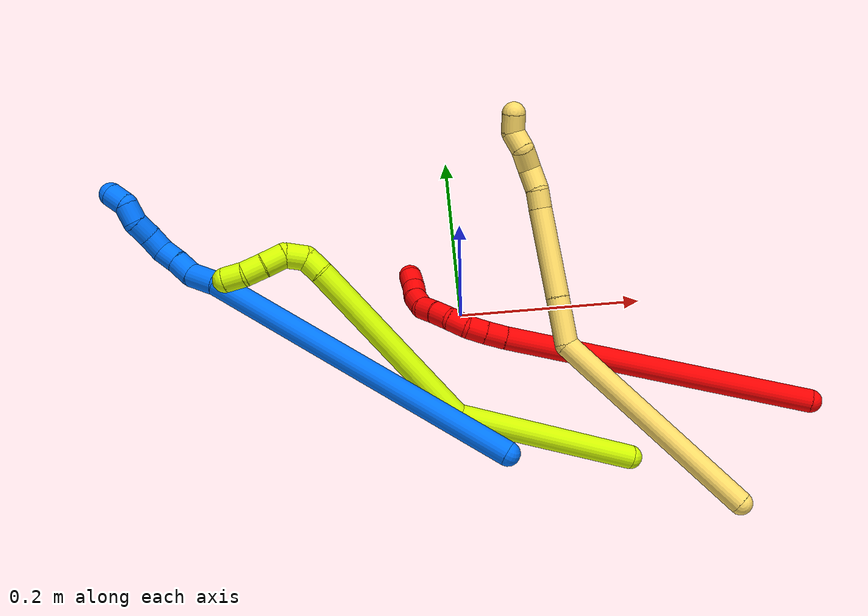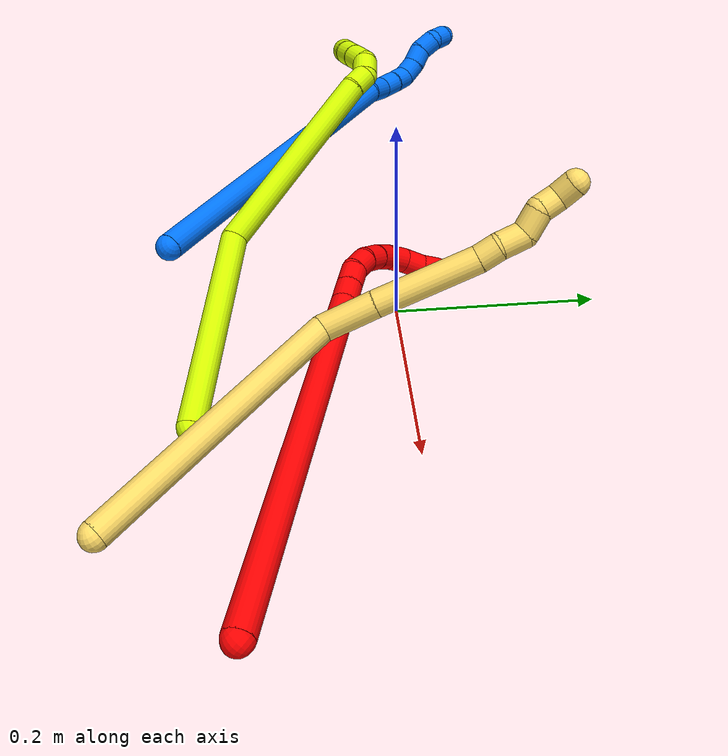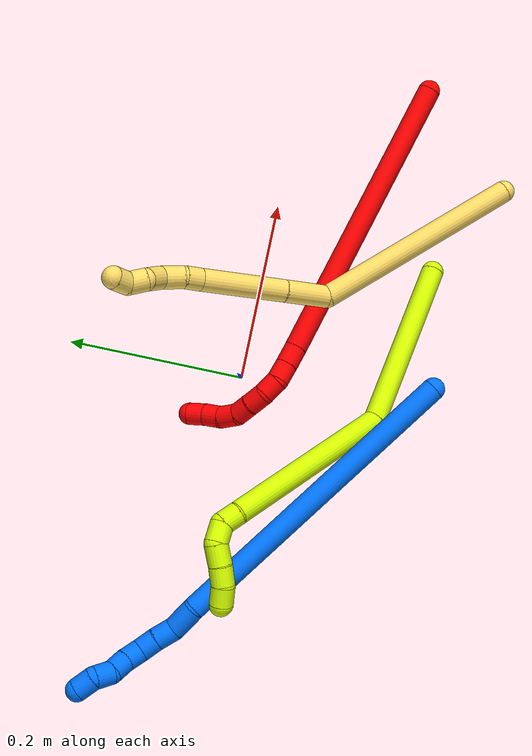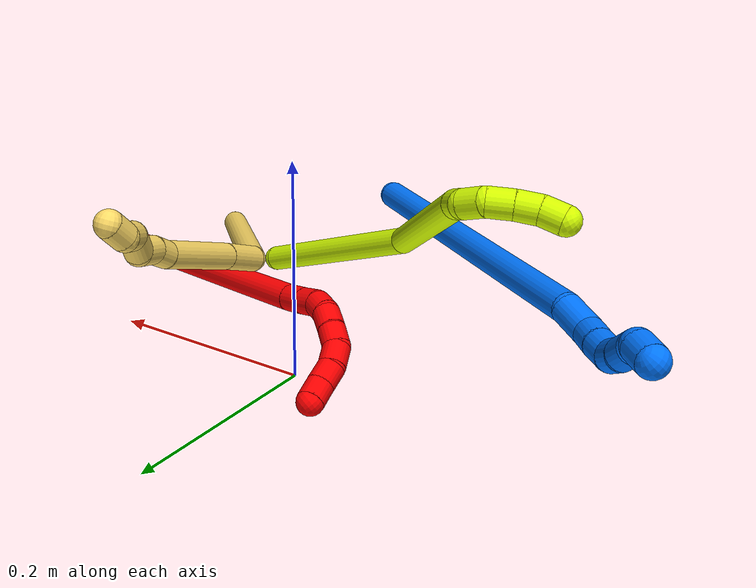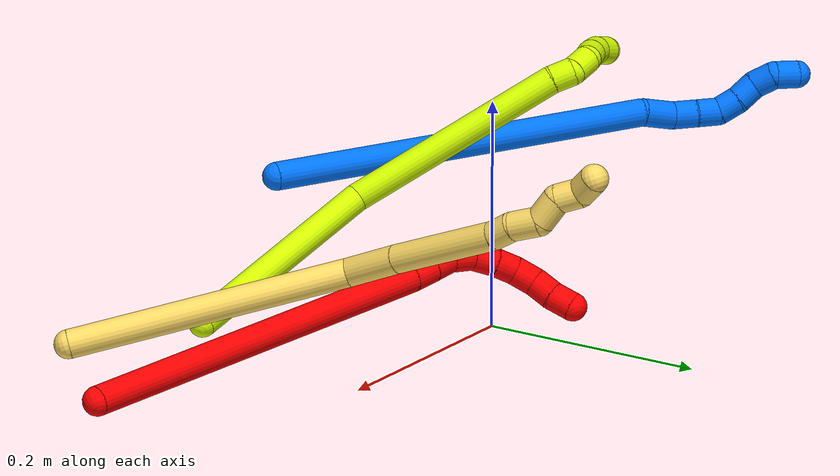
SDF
<sdf version="1.7">
 <world name="default">
  <model name="2">
   <static>0</static>
   <link name="2">
    <collision name="collision-cylinder-e_1_1_4">
     <pose>-0.140566 0.07217 0.053444 -0.933386 -1.00228 0.538556</pose>
     <geometry><cylinder><radius>0.0125</radius><length>0.333607</length></cylinder></geometry>
     <surface>
      <friction><ode><mu>1.16</mu><mu2>1.16</mu2><slip1>0</slip1><slip2>0</slip2></ode></friction>
      <contact><ode><kp>1e+06</kp><kd>1</kd><max_vel>0</max_vel><min_depth>0.001</min_depth></ode></contact>
     </surface>
    </collision>
    <visual name="visual-cylinder-e_1_1_4">
     <pose>-0.140566 0.07217 0.053444 -0.933386 -1.00228 0.538556</pose>
     <geometry><cylinder><radius>0.0125</radius><length>0.333607</length></cylinder></geometry>
     <material><ambient>1 0 0 1</ambient></material>
    </visual>
    <collision name="collision-cylinder-e_2_4_5">
     <pose>-0.290074 0.14998 0.110898 -0.952673 -0.912114 0.495796</pose>
     <geometry><cylinder><radius>0.0125</radius><length>0.022617</length></cylinder></geometry>
     <surface>
      <friction><ode><mu>1.16</mu><mu2>1.16</mu2><slip1>0</slip1><slip2>0</slip2></ode></friction>
      <contact><ode><kp>1e+06</kp><kd>1</kd><max_vel>0</max_vel><min_depth>0.001</min_depth></ode></contact>
     </surface>
    </collision>
    <visual name="visual-cylinder-e_2_4_5">
     <pose>-0.290074 0.14998 0.110898 -0.952673 -0.912114 0.495796</pose>
     <geometry><cylinder><radius>0.0125</radius><length>0.022617</length></cylinder></geometry>
     <material><ambient>1 0 0 1</ambient></material>
    </visual>
    <collision name="collision-cylinder-e_3_5_6">
     <pose>-0.306846 0.16126 0.118599 -0.9914 -0.860181 0.486286</pose>
     <geometry><cylinder><radius>0.0125</radius><length>0.02066</length></cylinder></geometry>
     <surface>
      <friction><ode><mu>1.16</mu><mu2>1.16</mu2><slip1>0</slip1><slip2>0</slip2></ode></friction>
      <contact><ode><kp>1e+06</kp><kd>1</kd><max_vel>0</max_vel><min_depth>0.001</min_depth></ode></contact>
     </surface>
    </collision>
    <visual name="visual-cylinder-e_3_5_6">
     <pose>-0.306846 0.16126 0.118599 -0.9914 -0.860181 0.486286</pose>
     <geometry><cylinder><radius>0.0125</radius><length>0.02066</length></cylinder></geometry>
     <material><ambient>1 0 0 1</ambient></material>
    </visual>
    <collision name="collision-cylinder-e_4_6_7">
     <pose>-0.323589 0.17233 0.122321 -1.56482 -1.02348 1.01838</pose>
     <geometry><cylinder><radius>0.0125</radius><length>0.020874</length></cylinder></geometry>
     <surface>
      <friction><ode><mu>1.16</mu><mu2>1.16</mu2><slip1>0</slip1><slip2>0</slip2></ode></friction>
      <contact><ode><kp>1e+06</kp><kd>1</kd><max_vel>0</max_vel><min_depth>0.001</min_depth></ode></contact>
     </surface>
    </collision>
    <visual name="visual-cylinder-e_4_6_7">
     <pose>-0.323589 0.17233 0.122321 -1.56482 -1.02348 1.01838</pose>
     <geometry><cylinder><radius>0.0125</radius><length>0.020874</length></cylinder></geometry>
     <material><ambient>1 0 0 1</ambient></material>
    </visual>
    <collision name="collision-cylinder-e_5_7_8">
     <pose>-0.341953 0.181156 0.11943 -2.28177 -1.12818 1.88732</pose>
     <geometry><cylinder><radius>0.0125</radius><length>0.020919</length></cylinder></geometry>
     <surface>
      <friction><ode><mu>1.16</mu><mu2>1.16</mu2><slip1>0</slip1><slip2>0</slip2></ode></friction>
      <contact><ode><kp>1e+06</kp><kd>1</kd><max_vel>0</max_vel><min_depth>0.001</min_depth></ode></contact>
     </surface>
    </collision>
    <visual name="visual-cylinder-e_5_7_8">
     <pose>-0.341953 0.181156 0.11943 -2.28177 -1.12818 1.88732</pose>
     <geometry><cylinder><radius>0.0125</radius><length>0.020919</length></cylinder></geometry>
     <material><ambient>1 0 0 1</ambient></material>
    </visual>
    <collision name="collision-cylinder-e_6_8_9">
     <pose>-0.360534 0.186814 0.113109 -2.5538 -1.15028 2.26796</pose>
     <geometry><cylinder><radius>0.0125</radius><length>0.020001</length></cylinder></geometry>
     <surface>
      <friction><ode><mu>1.16</mu><mu2>1.16</mu2><slip1>0</slip1><slip2>0</slip2></ode></friction>
      <contact><ode><kp>1e+06</kp><kd>1</kd><max_vel>0</max_vel><min_depth>0.001</min_depth></ode></contact>
     </surface>
    </collision>
    <visual name="visual-cylinder-e_6_8_9">
     <pose>-0.360534 0.186814 0.113109 -2.5538 -1.15028 2.26796</pose>
     <geometry><cylinder><radius>0.0125</radius><length>0.020001</length></cylinder></geometry>
     <material><ambient>1 0 0 1</ambient></material>
    </visual>
    <collision name="collision-cylinder-e_7_9_10">
     <pose>-0.376693 0.192526 0.102545 -2.69323 -0.723818 2.0574</pose>
     <geometry><cylinder><radius>0.0125</radius><length>0.021228</length></cylinder></geometry>
     <surface>
      <friction><ode><mu>1.16</mu><mu2>1.16</mu2><slip1>0</slip1><slip2>0</slip2></ode></friction>
      <contact><ode><kp>1e+06</kp><kd>1</kd><max_vel>0</max_vel><min_depth>0.001</min_depth></ode></contact>
     </surface>
    </collision>
    <visual name="visual-cylinder-e_7_9_10">
     <pose>-0.376693 0.192526 0.102545 -2.69323 -0.723818 2.0574</pose>
     <geometry><cylinder><radius>0.0125</radius><length>0.021228</length></cylinder></geometry>
     <material><ambient>1 0 0 1</ambient></material>
    </visual>
    <collision name="collision-cylinder-e_8_10_11">
     <pose>-0.388025 0.19898 0.086838 -2.80303 -0.443729 1.8448</pose>
     <geometry><cylinder><radius>0.0125</radius><length>0.020048</length></cylinder></geometry>
     <surface>
      <friction><ode><mu>1.16</mu><mu2>1.16</mu2><slip1>0</slip1><slip2>0</slip2></ode></friction>
      <contact><ode><kp>1e+06</kp><kd>1</kd><max_vel>0</max_vel><min_depth>0.001</min_depth></ode></contact>
     </surface>
    </collision>
    <visual name="visual-cylinder-e_8_10_11">
     <pose>-0.388025 0.19898 0.086838 -2.80303 -0.443729 1.8448</pose>
     <geometry><cylinder><radius>0.0125</radius><length>0.020048</length></cylinder></geometry>
     <material><ambient>1 0 0 1</ambient></material>
    </visual>
    <collision name="collision-cylinder-e_9_11_2">
     <pose>-0.397139 0.206293 0.070633 -2.62975 -0.500559 1.54753</pose>
     <geometry><cylinder><radius>0.0125</radius><length>0.020045</length></cylinder></geometry>
     <surface>
      <friction><ode><mu>1.16</mu><mu2>1.16</mu2><slip1>0</slip1><slip2>0</slip2></ode></friction>
      <contact><ode><kp>1e+06</kp><kd>1</kd><max_vel>0</max_vel><min_depth>0.001</min_depth></ode></contact>
     </surface>
    </collision>
    <visual name="visual-cylinder-e_9_11_2">
     <pose>-0.397139 0.206293 0.070633 -2.62975 -0.500559 1.54753</pose>
     <geometry><cylinder><radius>0.0125</radius><length>0.020045</length></cylinder></geometry>
     <material><ambient>1 0 0 1</ambient></material>
    </visual>
    <collision name="collision-sphere-2">
     <pose>-0.401949 0.2106 0.062967 0 -0 0</pose>
     <geometry><sphere><radius>0.0125</radius></sphere></geometry>
     <surface>
      <friction><ode><mu>1.16</mu><mu2>1.16</mu2><slip1>0</slip1><slip2>0</slip2></ode></friction>
      <contact><ode><kp>1e+06</kp><kd>1</kd><max_vel>0</max_vel><min_depth>0.001</min_depth></ode></contact>
     </surface>
    </collision>
    <visual name="visual-sphere-2">
     <pose>-0.401949 0.2106 0.062967 0 -0 0</pose>
     <geometry><sphere><radius>0.0125</radius></sphere></geometry>
     <material><ambient>1 0 0 1</ambient></material>
    </visual>
    <collision name="collision-sphere-11">
     <pose>-0.392329 0.201987 0.078299 0 -0 0</pose>
     <geometry><sphere><radius>0.0125</radius></sphere></geometry>
     <surface>
      <friction><ode><mu>1.16</mu><mu2>1.16</mu2><slip1>0</slip1><slip2>0</slip2></ode></friction>
      <contact><ode><kp>1e+06</kp><kd>1</kd><max_vel>0</max_vel><min_depth>0.001</min_depth></ode></contact>
     </surface>
    </collision>
    <visual name="visual-sphere-11">
     <pose>-0.392329 0.201987 0.078299 0 -0 0</pose>
     <geometry><sphere><radius>0.0125</radius></sphere></geometry>
     <material><ambient>1 0 0 1</ambient></material>
    </visual>
    <collision name="collision-sphere-10">
     <pose>-0.383722 0.195973 0.095378 0 -0 0</pose>
     <geometry><sphere><radius>0.0125</radius></sphere></geometry>
     <surface>
      <friction><ode><mu>1.16</mu><mu2>1.16</mu2><slip1>0</slip1><slip2>0</slip2></ode></friction>
      <contact><ode><kp>1e+06</kp><kd>1</kd><max_vel>0</max_vel><min_depth>0.001</min_depth></ode></contact>
     </surface>
    </collision>
    <visual name="visual-sphere-10">
     <pose>-0.383722 0.195973 0.095378 0 -0 0</pose>
     <geometry><sphere><radius>0.0125</radius></sphere></geometry>
     <material><ambient>1 0 0 1</ambient></material>
    </visual>
    <collision name="collision-sphere-9">
     <pose>-0.369663 0.189078 0.109711 0 -0 0</pose>
     <geometry><sphere><radius>0.0125</radius></sphere></geometry>
     <surface>
      <friction><ode><mu>1.16</mu><mu2>1.16</mu2><slip1>0</slip1><slip2>0</slip2></ode></friction>
      <contact><ode><kp>1e+06</kp><kd>1</kd><max_vel>0</max_vel><min_depth>0.001</min_depth></ode></contact>
     </surface>
    </collision>
    <visual name="visual-sphere-9">
     <pose>-0.369663 0.189078 0.109711 0 -0 0</pose>
     <geometry><sphere><radius>0.0125</radius></sphere></geometry>
     <material><ambient>1 0 0 1</ambient></material>
    </visual>
    <collision name="collision-sphere-4">
     <pose>-0.281131 0.144339 0.106887 0 -0 0</pose>
     <geometry><sphere><radius>0.0125</radius></sphere></geometry>
     <surface>
      <friction><ode><mu>1.16</mu><mu2>1.16</mu2><slip1>0</slip1><slip2>0</slip2></ode></friction>
      <contact><ode><kp>1e+06</kp><kd>1</kd><max_vel>0</max_vel><min_depth>0.001</min_depth></ode></contact>
     </surface>
    </collision>
    <visual name="visual-sphere-4">
     <pose>-0.281131 0.144339 0.106887 0 -0 0</pose>
     <geometry><sphere><radius>0.0125</radius></sphere></geometry>
     <material><ambient>1 0 0 1</ambient></material>
    </visual>
    <collision name="collision-sphere-1">
     <geometry><sphere><radius>0.0125</radius></sphere></geometry>
     <surface>
      <friction><ode><mu>1.16</mu><mu2>1.16</mu2><slip1>0</slip1><slip2>0</slip2></ode></friction>
      <contact><ode><kp>1e+06</kp><kd>1</kd><max_vel>0</max_vel><min_depth>0.001</min_depth></ode></contact>
     </surface>
    </collision>
    <visual name="visual-sphere-1">
     <geometry><sphere><radius>0.0125</radius></sphere></geometry>
     <material><ambient>1 0 0 1</ambient></material>
    </visual>
    <collision name="collision-sphere-8">
     <pose>-0.351405 0.18455 0.116506 0 -0 0</pose>
     <geometry><sphere><radius>0.0125</radius></sphere></geometry>
     <surface>
      <friction><ode><mu>1.16</mu><mu2>1.16</mu2><slip1>0</slip1><slip2>0</slip2></ode></friction>
      <contact><ode><kp>1e+06</kp><kd>1</kd><max_vel>0</max_vel><min_depth>0.001</min_depth></ode></contact>
     </surface>
    </collision>
    <visual name="visual-sphere-8">
     <pose>-0.351405 0.18455 0.116506 0 -0 0</pose>
     <geometry><sphere><radius>0.0125</radius></sphere></geometry>
     <material><ambient>1 0 0 1</ambient></material>
    </visual>
    <collision name="collision-sphere-5">
     <pose>-0.299016 0.155621 0.114909 0 -0 0</pose>
     <geometry><sphere><radius>0.0125</radius></sphere></geometry>
     <surface>
      <friction><ode><mu>1.16</mu><mu2>1.16</mu2><slip1>0</slip1><slip2>0</slip2></ode></friction>
      <contact><ode><kp>1e+06</kp><kd>1</kd><max_vel>0</max_vel><min_depth>0.001</min_depth></ode></contact>
     </surface>
    </collision>
    <visual name="visual-sphere-5">
     <pose>-0.299016 0.155621 0.114909 0 -0 0</pose>
     <geometry><sphere><radius>0.0125</radius></sphere></geometry>
     <material><ambient>1 0 0 1</ambient></material>
    </visual>
    <collision name="collision-sphere-6">
     <pose>-0.314676 0.166898 0.122288 0 -0 0</pose>
     <geometry><sphere><radius>0.0125</radius></sphere></geometry>
     <surface>
      <friction><ode><mu>1.16</mu><mu2>1.16</mu2><slip1>0</slip1><slip2>0</slip2></ode></friction>
      <contact><ode><kp>1e+06</kp><kd>1</kd><max_vel>0</max_vel><min_depth>0.001</min_depth></ode></contact>
     </surface>
    </collision>
    <visual name="visual-sphere-6">
     <pose>-0.314676 0.166898 0.122288 0 -0 0</pose>
     <geometry><sphere><radius>0.0125</radius></sphere></geometry>
     <material><ambient>1 0 0 1</ambient></material>
    </visual>
    <collision name="collision-sphere-7">
     <pose>-0.332501 0.177761 0.122353 0 -0 0</pose>
     <geometry><sphere><radius>0.0125</radius></sphere></geometry>
     <surface>
      <friction><ode><mu>1.16</mu><mu2>1.16</mu2><slip1>0</slip1><slip2>0</slip2></ode></friction>
      <contact><ode><kp>1e+06</kp><kd>1</kd><max_vel>0</max_vel><min_depth>0.001</min_depth></ode></contact>
     </surface>
    </collision>
    <visual name="visual-sphere-7">
     <pose>-0.332501 0.177761 0.122353 0 -0 0</pose>
     <geometry><sphere><radius>0.0125</radius></sphere></geometry>
     <material><ambient>1 0 0 1</ambient></material>
    </visual>
    <inertial>
     <pose>-0.209298 0.10827 0.070871 0 -0 0</pose>
     <mass>0.5</mass>
     <inertia>
      <ixx>0.00227</ixx>
      <ixy>0</ixy>
      <ixz>0</ixz>
      <iyy>0.003556</iyy>
      <iyz>0</iyz>
      <izz>0.001283</izz>
     </inertia>
    </inertial>
   </link>
   <pose>0.364196 -0.141802 0.011496 0.881998 -0.465694 -0.242518</pose>
  </model>
  <model name="5">
   <static>0</static>
   <link name="5">
    <collision name="collision-cylinder-e_1_1_4">
     <pose>-0.041475 0.113736 -0.009554 -1.65461 -0.348549 0.378362</pose>
     <geometry><cylinder><radius>0.0125</radius><length>0.242877</length></cylinder></geometry>
     <surface>
      <friction><ode><mu>1.16</mu><mu2>1.16</mu2><slip1>0</slip1><slip2>0</slip2></ode></friction>
      <contact><ode><kp>1e+06</kp><kd>1</kd><max_vel>0</max_vel><min_depth>0.001</min_depth></ode></contact>
     </surface>
    </collision>
    <visual name="visual-cylinder-e_1_1_4">
     <pose>-0.041475 0.113736 -0.009554 -1.65461 -0.348549 0.378362</pose>
     <geometry><cylinder><radius>0.0125</radius><length>0.242877</length></cylinder></geometry>
     <material><ambient>1 0.858824 0.4 1</ambient></material>
    </visual>
    <collision name="collision-cylinder-e_2_4_5">
     <pose>-0.075578 0.251654 -0.01982 -1.60018 0.295826 -0.304517</pose>
     <geometry><cylinder><radius>0.0125</radius><length>0.050584</length></cylinder></geometry>
     <surface>
      <friction><ode><mu>1.16</mu><mu2>1.16</mu2><slip1>0</slip1><slip2>0</slip2></ode></friction>
      <contact><ode><kp>1e+06</kp><kd>1</kd><max_vel>0</max_vel><min_depth>0.001</min_depth></ode></contact>
     </surface>
    </collision>
    <visual name="visual-cylinder-e_2_4_5">
     <pose>-0.075578 0.251654 -0.01982 -1.60018 0.295826 -0.304517</pose>
     <geometry><cylinder><radius>0.0125</radius><length>0.050584</length></cylinder></geometry>
     <material><ambient>1 0.858824 0.4 1</ambient></material>
    </visual>
    <collision name="collision-cylinder-e_3_5_6">
     <pose>-0.0543 0.321946 -0.023348 -1.63182 0.292364 -0.310487</pose>
     <geometry><cylinder><radius>0.0125</radius><length>0.096484</length></cylinder></geometry>
     <surface>
      <friction><ode><mu>1.16</mu><mu2>1.16</mu2><slip1>0</slip1><slip2>0</slip2></ode></friction>
      <contact><ode><kp>1e+06</kp><kd>1</kd><max_vel>0</max_vel><min_depth>0.001</min_depth></ode></contact>
     </surface>
    </collision>
    <visual name="visual-cylinder-e_3_5_6">
     <pose>-0.0543 0.321946 -0.023348 -1.63182 0.292364 -0.310487</pose>
     <geometry><cylinder><radius>0.0125</radius><length>0.096484</length></cylinder></geometry>
     <material><ambient>1 0.858824 0.4 1</ambient></material>
    </visual>
    <collision name="collision-cylinder-e_4_6_7">
     <pose>-0.037355 0.377678 -0.024845 -1.43441 0.30343 -0.265119</pose>
     <geometry><cylinder><radius>0.0125</radius><length>0.020356</length></cylinder></geometry>
     <surface>
      <friction><ode><mu>1.16</mu><mu2>1.16</mu2><slip1>0</slip1><slip2>0</slip2></ode></friction>
      <contact><ode><kp>1e+06</kp><kd>1</kd><max_vel>0</max_vel><min_depth>0.001</min_depth></ode></contact>
     </surface>
    </collision>
    <visual name="visual-cylinder-e_4_6_7">
     <pose>-0.037355 0.377678 -0.024845 -1.43441 0.30343 -0.265119</pose>
     <geometry><cylinder><radius>0.0125</radius><length>0.020356</length></cylinder></geometry>
     <material><ambient>1 0.858824 0.4 1</ambient></material>
    </visual>
    <collision name="collision-cylinder-e_5_7_8">
     <pose>-0.032602 0.399614 -0.024948 -1.68593 0.137238 -0.153961</pose>
     <geometry><cylinder><radius>0.0125</radius><length>0.025026</length></cylinder></geometry>
     <surface>
      <friction><ode><mu>1.16</mu><mu2>1.16</mu2><slip1>0</slip1><slip2>0</slip2></ode></friction>
      <contact><ode><kp>1e+06</kp><kd>1</kd><max_vel>0</max_vel><min_depth>0.001</min_depth></ode></contact>
     </surface>
    </collision>
    <visual name="visual-cylinder-e_5_7_8">
     <pose>-0.032602 0.399614 -0.024948 -1.68593 0.137238 -0.153961</pose>
     <geometry><cylinder><radius>0.0125</radius><length>0.025026</length></cylinder></geometry>
     <material><ambient>1 0.858824 0.4 1</ambient></material>
    </visual>
    <collision name="collision-cylinder-e_6_8_9">
     <pose>-0.030005 0.421986 -0.0199 -0.999081 0.073814 -0.040294</pose>
     <geometry><cylinder><radius>0.0125</radius><length>0.023989</length></cylinder></geometry>
     <surface>
      <friction><ode><mu>1.16</mu><mu2>1.16</mu2><slip1>0</slip1><slip2>0</slip2></ode></friction>
      <contact><ode><kp>1e+06</kp><kd>1</kd><max_vel>0</max_vel><min_depth>0.001</min_depth></ode></contact>
     </surface>
    </collision>
    <visual name="visual-cylinder-e_6_8_9">
     <pose>-0.030005 0.421986 -0.0199 -0.999081 0.073814 -0.040294</pose>
     <geometry><cylinder><radius>0.0125</radius><length>0.023989</length></cylinder></geometry>
     <material><ambient>1 0.858824 0.4 1</ambient></material>
    </visual>
    <collision name="collision-cylinder-e_7_9_10">
     <pose>-0.029536 0.442226 -0.013976 -1.62462 -0.040685 0.042935</pose>
     <geometry><cylinder><radius>0.0125</radius><length>0.020406</length></cylinder></geometry>
     <surface>
      <friction><ode><mu>1.16</mu><mu2>1.16</mu2><slip1>0</slip1><slip2>0</slip2></ode></friction>
      <contact><ode><kp>1e+06</kp><kd>1</kd><max_vel>0</max_vel><min_depth>0.001</min_depth></ode></contact>
     </surface>
    </collision>
    <visual name="visual-cylinder-e_7_9_10">
     <pose>-0.029536 0.442226 -0.013976 -1.62462 -0.040685 0.042935</pose>
     <geometry><cylinder><radius>0.0125</radius><length>0.020406</length></cylinder></geometry>
     <material><ambient>1 0.858824 0.4 1</ambient></material>
    </visual>
    <collision name="collision-cylinder-e_8_10_2">
     <pose>-0.025352 0.46062 -0.01076 -1.14105 0.470774 -0.30541</pose>
     <geometry><cylinder><radius>0.0125</radius><length>0.020278</length></cylinder></geometry>
     <surface>
      <friction><ode><mu>1.16</mu><mu2>1.16</mu2><slip1>0</slip1><slip2>0</slip2></ode></friction>
      <contact><ode><kp>1e+06</kp><kd>1</kd><max_vel>0</max_vel><min_depth>0.001</min_depth></ode></contact>
     </surface>
    </collision>
    <visual name="visual-cylinder-e_8_10_2">
     <pose>-0.025352 0.46062 -0.01076 -1.14105 0.470774 -0.30541</pose>
     <geometry><cylinder><radius>0.0125</radius><length>0.020278</length></cylinder></geometry>
     <material><ambient>1 0.858824 0.4 1</ambient></material>
    </visual>
    <collision name="collision-sphere-2">
     <pose>-0.020753 0.468835 -0.006995 0 -0 0</pose>
     <geometry><sphere><radius>0.0125</radius></sphere></geometry>
     <surface>
      <friction><ode><mu>1.16</mu><mu2>1.16</mu2><slip1>0</slip1><slip2>0</slip2></ode></friction>
      <contact><ode><kp>1e+06</kp><kd>1</kd><max_vel>0</max_vel><min_depth>0.001</min_depth></ode></contact>
     </surface>
    </collision>
    <visual name="visual-sphere-2">
     <pose>-0.020753 0.468835 -0.006995 0 -0 0</pose>
     <geometry><sphere><radius>0.0125</radius></sphere></geometry>
     <material><ambient>1 0.858824 0.4 1</ambient></material>
    </visual>
    <collision name="collision-sphere-10">
     <pose>-0.029951 0.452406 -0.014524 0 -0 0</pose>
     <geometry><sphere><radius>0.0125</radius></sphere></geometry>
     <surface>
      <friction><ode><mu>1.16</mu><mu2>1.16</mu2><slip1>0</slip1><slip2>0</slip2></ode></friction>
      <contact><ode><kp>1e+06</kp><kd>1</kd><max_vel>0</max_vel><min_depth>0.001</min_depth></ode></contact>
     </surface>
    </collision>
    <visual name="visual-sphere-10">
     <pose>-0.029951 0.452406 -0.014524 0 -0 0</pose>
     <geometry><sphere><radius>0.0125</radius></sphere></geometry>
     <material><ambient>1 0.858824 0.4 1</ambient></material>
    </visual>
    <collision name="collision-sphere-9">
     <pose>-0.029121 0.432046 -0.013427 0 -0 0</pose>
     <geometry><sphere><radius>0.0125</radius></sphere></geometry>
     <surface>
      <friction><ode><mu>1.16</mu><mu2>1.16</mu2><slip1>0</slip1><slip2>0</slip2></ode></friction>
      <contact><ode><kp>1e+06</kp><kd>1</kd><max_vel>0</max_vel><min_depth>0.001</min_depth></ode></contact>
     </surface>
    </collision>
    <visual name="visual-sphere-9">
     <pose>-0.029121 0.432046 -0.013427 0 -0 0</pose>
     <geometry><sphere><radius>0.0125</radius></sphere></geometry>
     <material><ambient>1 0.858824 0.4 1</ambient></material>
    </visual>
    <collision name="collision-sphere-4">
     <pose>-0.082951 0.227471 -0.019109 0 -0 0</pose>
     <geometry><sphere><radius>0.0125</radius></sphere></geometry>
     <surface>
      <friction><ode><mu>1.16</mu><mu2>1.16</mu2><slip1>0</slip1><slip2>0</slip2></ode></friction>
      <contact><ode><kp>1e+06</kp><kd>1</kd><max_vel>0</max_vel><min_depth>0.001</min_depth></ode></contact>
     </surface>
    </collision>
    <visual name="visual-sphere-4">
     <pose>-0.082951 0.227471 -0.019109 0 -0 0</pose>
     <geometry><sphere><radius>0.0125</radius></sphere></geometry>
     <material><ambient>1 0.858824 0.4 1</ambient></material>
    </visual>
    <collision name="collision-sphere-1">
     <geometry><sphere><radius>0.0125</radius></sphere></geometry>
     <surface>
      <friction><ode><mu>1.16</mu><mu2>1.16</mu2><slip1>0</slip1><slip2>0</slip2></ode></friction>
      <contact><ode><kp>1e+06</kp><kd>1</kd><max_vel>0</max_vel><min_depth>0.001</min_depth></ode></contact>
     </surface>
    </collision>
    <visual name="visual-sphere-1">
     <geometry><sphere><radius>0.0125</radius></sphere></geometry>
     <material><ambient>1 0.858824 0.4 1</ambient></material>
    </visual>
    <collision name="collision-sphere-8">
     <pose>-0.03089 0.411927 -0.026372 0 -0 0</pose>
     <geometry><sphere><radius>0.0125</radius></sphere></geometry>
     <surface>
      <friction><ode><mu>1.16</mu><mu2>1.16</mu2><slip1>0</slip1><slip2>0</slip2></ode></friction>
      <contact><ode><kp>1e+06</kp><kd>1</kd><max_vel>0</max_vel><min_depth>0.001</min_depth></ode></contact>
     </surface>
    </collision>
    <visual name="visual-sphere-8">
     <pose>-0.03089 0.411927 -0.026372 0 -0 0</pose>
     <geometry><sphere><radius>0.0125</radius></sphere></geometry>
     <material><ambient>1 0.858824 0.4 1</ambient></material>
    </visual>
    <collision name="collision-sphere-5">
     <pose>-0.068204 0.275837 -0.020531 0 -0 0</pose>
     <geometry><sphere><radius>0.0125</radius></sphere></geometry>
     <surface>
      <friction><ode><mu>1.16</mu><mu2>1.16</mu2><slip1>0</slip1><slip2>0</slip2></ode></friction>
      <contact><ode><kp>1e+06</kp><kd>1</kd><max_vel>0</max_vel><min_depth>0.001</min_depth></ode></contact>
     </surface>
    </collision>
    <visual name="visual-sphere-5">
     <pose>-0.068204 0.275837 -0.020531 0 -0 0</pose>
     <geometry><sphere><radius>0.0125</radius></sphere></geometry>
     <material><ambient>1 0.858824 0.4 1</ambient></material>
    </visual>
    <collision name="collision-sphere-6">
     <pose>-0.040396 0.368055 -0.026165 0 -0 0</pose>
     <geometry><sphere><radius>0.0125</radius></sphere></geometry>
     <surface>
      <friction><ode><mu>1.16</mu><mu2>1.16</mu2><slip1>0</slip1><slip2>0</slip2></ode></friction>
      <contact><ode><kp>1e+06</kp><kd>1</kd><max_vel>0</max_vel><min_depth>0.001</min_depth></ode></contact>
     </surface>
    </collision>
    <visual name="visual-sphere-6">
     <pose>-0.040396 0.368055 -0.026165 0 -0 0</pose>
     <geometry><sphere><radius>0.0125</radius></sphere></geometry>
     <material><ambient>1 0.858824 0.4 1</ambient></material>
    </visual>
    <collision name="collision-sphere-7">
     <pose>-0.034314 0.387301 -0.023524 0 -0 0</pose>
     <geometry><sphere><radius>0.0125</radius></sphere></geometry>
     <surface>
      <friction><ode><mu>1.16</mu><mu2>1.16</mu2><slip1>0</slip1><slip2>0</slip2></ode></friction>
      <contact><ode><kp>1e+06</kp><kd>1</kd><max_vel>0</max_vel><min_depth>0.001</min_depth></ode></contact>
     </surface>
    </collision>
    <visual name="visual-sphere-7">
     <pose>-0.034314 0.387301 -0.023524 0 -0 0</pose>
     <geometry><sphere><radius>0.0125</radius></sphere></geometry>
     <material><ambient>1 0.858824 0.4 1</ambient></material>
    </visual>
    <inertial>
     <pose>-0.045097 0.235185 -0.015373 0 -0 0</pose>
     <mass>0.5</mass>
     <inertia>
      <ixx>0.001531</ixx>
      <ixy>0</ixy>
      <ixz>0</ixz>
      <iyy>0.000489</iyy>
      <iyz>0</iyz>
      <izz>-0.00084</izz>
     </inertia>
    </inertial>
   </link>
   <pose>0.26866 -0.248025 0.012479 0.381446 -0.184357 0.350459</pose>
  </model>
  <model name="14">
   <static>0</static>
   <link name="14">
    <collision name="collision-cylinder-e_1_1_4">
     <pose>-0.052982 0.163715 -0.009892 -1.63114 -0.312453 0.331557</pose>
     <geometry><cylinder><radius>0.0125</radius><length>0.344717</length></cylinder></geometry>
     <surface>
      <friction><ode><mu>1.16</mu><mu2>1.16</mu2><slip1>0</slip1><slip2>0</slip2></ode></friction>
      <contact><ode><kp>1e+06</kp><kd>1</kd><max_vel>0</max_vel><min_depth>0.001</min_depth></ode></contact>
     </surface>
    </collision>
    <visual name="visual-cylinder-e_1_1_4">
     <pose>-0.052982 0.163715 -0.009892 -1.63114 -0.312453 0.331557</pose>
     <geometry><cylinder><radius>0.0125</radius><length>0.344717</length></cylinder></geometry>
     <material><ambient>0 0.462745 1 1</ambient></material>
    </visual>
    <collision name="collision-cylinder-e_2_4_5">
     <pose>-0.108291 0.341938 -0.024466 -1.88298 -0.151484 0.207717</pose>
     <geometry><cylinder><radius>0.0125</radius><length>0.030843</length></cylinder></geometry>
     <surface>
      <friction><ode><mu>1.16</mu><mu2>1.16</mu2><slip1>0</slip1><slip2>0</slip2></ode></friction>
      <contact><ode><kp>1e+06</kp><kd>1</kd><max_vel>0</max_vel><min_depth>0.001</min_depth></ode></contact>
     </surface>
    </collision>
    <visual name="visual-cylinder-e_2_4_5">
     <pose>-0.108291 0.341938 -0.024466 -1.88298 -0.151484 0.207717</pose>
     <geometry><cylinder><radius>0.0125</radius><length>0.030843</length></cylinder></geometry>
     <material><ambient>0 0.462745 1 1</ambient></material>
    </visual>
    <collision name="collision-cylinder-e_3_5_6">
     <pose>-0.112233 0.367286 -0.028308 -1.49338 -0.147415 0.136458</pose>
     <geometry><cylinder><radius>0.0125</radius><length>0.021985</length></cylinder></geometry>
     <surface>
      <friction><ode><mu>1.16</mu><mu2>1.16</mu2><slip1>0</slip1><slip2>0</slip2></ode></friction>
      <contact><ode><kp>1e+06</kp><kd>1</kd><max_vel>0</max_vel><min_depth>0.001</min_depth></ode></contact>
     </surface>
    </collision>
    <visual name="visual-cylinder-e_3_5_6">
     <pose>-0.112233 0.367286 -0.028308 -1.49338 -0.147415 0.136458</pose>
     <geometry><cylinder><radius>0.0125</radius><length>0.021985</length></cylinder></geometry>
     <material><ambient>0 0.462745 1 1</ambient></material>
    </visual>
    <collision name="collision-cylinder-e_4_6_7">
     <pose>-0.115867 0.388267 -0.027494 -1.57354 -0.196604 0.197141</pose>
     <geometry><cylinder><radius>0.0125</radius><length>0.020678</length></cylinder></geometry>
     <surface>
      <friction><ode><mu>1.16</mu><mu2>1.16</mu2><slip1>0</slip1><slip2>0</slip2></ode></friction>
      <contact><ode><kp>1e+06</kp><kd>1</kd><max_vel>0</max_vel><min_depth>0.001</min_depth></ode></contact>
     </surface>
    </collision>
    <visual name="visual-cylinder-e_4_6_7">
     <pose>-0.115867 0.388267 -0.027494 -1.57354 -0.196604 0.197141</pose>
     <geometry><cylinder><radius>0.0125</radius><length>0.020678</length></cylinder></geometry>
     <material><ambient>0 0.462745 1 1</ambient></material>
    </visual>
    <collision name="collision-cylinder-e_5_7_8">
     <pose>-0.122499 0.406583 -0.023677 -1.13124 -0.472034 0.303</pose>
     <geometry><cylinder><radius>0.0125</radius><length>0.02029</length></cylinder></geometry>
     <surface>
      <friction><ode><mu>1.16</mu><mu2>1.16</mu2><slip1>0</slip1><slip2>0</slip2></ode></friction>
      <contact><ode><kp>1e+06</kp><kd>1</kd><max_vel>0</max_vel><min_depth>0.001</min_depth></ode></contact>
     </surface>
    </collision>
    <visual name="visual-cylinder-e_5_7_8">
     <pose>-0.122499 0.406583 -0.023677 -1.13124 -0.472034 0.303</pose>
     <geometry><cylinder><radius>0.0125</radius><length>0.02029</length></cylinder></geometry>
     <material><ambient>0 0.462745 1 1</ambient></material>
    </visual>
    <collision name="collision-cylinder-e_6_8_9">
     <pose>-0.133443 0.421615 -0.015818 -1.04109 -0.672833 0.395722</pose>
     <geometry><cylinder><radius>0.0125</radius><length>0.020316</length></cylinder></geometry>
     <surface>
      <friction><ode><mu>1.16</mu><mu2>1.16</mu2><slip1>0</slip1><slip2>0</slip2></ode></friction>
      <contact><ode><kp>1e+06</kp><kd>1</kd><max_vel>0</max_vel><min_depth>0.001</min_depth></ode></contact>
     </surface>
    </collision>
    <visual name="visual-cylinder-e_6_8_9">
     <pose>-0.133443 0.421615 -0.015818 -1.04109 -0.672833 0.395722</pose>
     <geometry><cylinder><radius>0.0125</radius><length>0.020316</length></cylinder></geometry>
     <material><ambient>0 0.462745 1 1</ambient></material>
    </visual>
    <collision name="collision-cylinder-e_7_9_10">
     <pose>-0.142361 0.436501 -0.006224 -0.963522 -0.258628 0.135774</pose>
     <geometry><cylinder><radius>0.0125</radius><length>0.020231</length></cylinder></geometry>
     <surface>
      <friction><ode><mu>1.16</mu><mu2>1.16</mu2><slip1>0</slip1><slip2>0</slip2></ode></friction>
      <contact><ode><kp>1e+06</kp><kd>1</kd><max_vel>0</max_vel><min_depth>0.001</min_depth></ode></contact>
     </surface>
    </collision>
    <visual name="visual-cylinder-e_7_9_10">
     <pose>-0.142361 0.436501 -0.006224 -0.963522 -0.258628 0.135774</pose>
     <geometry><cylinder><radius>0.0125</radius><length>0.020231</length></cylinder></geometry>
     <material><ambient>0 0.462745 1 1</ambient></material>
    </visual>
    <collision name="collision-cylinder-e_8_10_2">
     <pose>-0.146608 0.45486 -0.001094 -1.61435 -0.159252 0.166311</pose>
     <geometry><cylinder><radius>0.0125</radius><length>0.02094</length></cylinder></geometry>
     <surface>
      <friction><ode><mu>1.16</mu><mu2>1.16</mu2><slip1>0</slip1><slip2>0</slip2></ode></friction>
      <contact><ode><kp>1e+06</kp><kd>1</kd><max_vel>0</max_vel><min_depth>0.001</min_depth></ode></contact>
     </surface>
    </collision>
    <visual name="visual-cylinder-e_8_10_2">
     <pose>-0.146608 0.45486 -0.001094 -1.61435 -0.159252 0.166311</pose>
     <geometry><cylinder><radius>0.0125</radius><length>0.02094</length></cylinder></geometry>
     <material><ambient>0 0.462745 1 1</ambient></material>
    </visual>
    <collision name="collision-sphere-2">
     <pose>-0.148268 0.465187 -0.001544 0 -0 0</pose>
     <geometry><sphere><radius>0.0125</radius></sphere></geometry>
     <surface>
      <friction><ode><mu>1.16</mu><mu2>1.16</mu2><slip1>0</slip1><slip2>0</slip2></ode></friction>
      <contact><ode><kp>1e+06</kp><kd>1</kd><max_vel>0</max_vel><min_depth>0.001</min_depth></ode></contact>
     </surface>
    </collision>
    <visual name="visual-sphere-2">
     <pose>-0.148268 0.465187 -0.001544 0 -0 0</pose>
     <geometry><sphere><radius>0.0125</radius></sphere></geometry>
     <material><ambient>0 0.462745 1 1</ambient></material>
    </visual>
    <collision name="collision-sphere-10">
     <pose>-0.144948 0.444532 -0.000643 0 -0 0</pose>
     <geometry><sphere><radius>0.0125</radius></sphere></geometry>
     <surface>
      <friction><ode><mu>1.16</mu><mu2>1.16</mu2><slip1>0</slip1><slip2>0</slip2></ode></friction>
      <contact><ode><kp>1e+06</kp><kd>1</kd><max_vel>0</max_vel><min_depth>0.001</min_depth></ode></contact>
     </surface>
    </collision>
    <visual name="visual-sphere-10">
     <pose>-0.144948 0.444532 -0.000643 0 -0 0</pose>
     <geometry><sphere><radius>0.0125</radius></sphere></geometry>
     <material><ambient>0 0.462745 1 1</ambient></material>
    </visual>
    <collision name="collision-sphere-9">
     <pose>-0.139774 0.428471 -0.011804 0 -0 0</pose>
     <geometry><sphere><radius>0.0125</radius></sphere></geometry>
     <surface>
      <friction><ode><mu>1.16</mu><mu2>1.16</mu2><slip1>0</slip1><slip2>0</slip2></ode></friction>
      <contact><ode><kp>1e+06</kp><kd>1</kd><max_vel>0</max_vel><min_depth>0.001</min_depth></ode></contact>
     </surface>
    </collision>
    <visual name="visual-sphere-9">
     <pose>-0.139774 0.428471 -0.011804 0 -0 0</pose>
     <geometry><sphere><radius>0.0125</radius></sphere></geometry>
     <material><ambient>0 0.462745 1 1</ambient></material>
    </visual>
    <collision name="collision-sphere-4">
     <pose>-0.105964 0.327429 -0.019784 0 -0 0</pose>
     <geometry><sphere><radius>0.0125</radius></sphere></geometry>
     <surface>
      <friction><ode><mu>1.16</mu><mu2>1.16</mu2><slip1>0</slip1><slip2>0</slip2></ode></friction>
      <contact><ode><kp>1e+06</kp><kd>1</kd><max_vel>0</max_vel><min_depth>0.001</min_depth></ode></contact>
     </surface>
    </collision>
    <visual name="visual-sphere-4">
     <pose>-0.105964 0.327429 -0.019784 0 -0 0</pose>
     <geometry><sphere><radius>0.0125</radius></sphere></geometry>
     <material><ambient>0 0.462745 1 1</ambient></material>
    </visual>
    <collision name="collision-sphere-1">
     <geometry><sphere><radius>0.0125</radius></sphere></geometry>
     <surface>
      <friction><ode><mu>1.16</mu><mu2>1.16</mu2><slip1>0</slip1><slip2>0</slip2></ode></friction>
      <contact><ode><kp>1e+06</kp><kd>1</kd><max_vel>0</max_vel><min_depth>0.001</min_depth></ode></contact>
     </surface>
    </collision>
    <visual name="visual-sphere-1">
     <geometry><sphere><radius>0.0125</radius></sphere></geometry>
     <material><ambient>0 0.462745 1 1</ambient></material>
    </visual>
    <collision name="collision-sphere-8">
     <pose>-0.127112 0.414759 -0.019832 0 -0 0</pose>
     <geometry><sphere><radius>0.0125</radius></sphere></geometry>
     <surface>
      <friction><ode><mu>1.16</mu><mu2>1.16</mu2><slip1>0</slip1><slip2>0</slip2></ode></friction>
      <contact><ode><kp>1e+06</kp><kd>1</kd><max_vel>0</max_vel><min_depth>0.001</min_depth></ode></contact>
     </surface>
    </collision>
    <visual name="visual-sphere-8">
     <pose>-0.127112 0.414759 -0.019832 0 -0 0</pose>
     <geometry><sphere><radius>0.0125</radius></sphere></geometry>
     <material><ambient>0 0.462745 1 1</ambient></material>
    </visual>
    <collision name="collision-sphere-5">
     <pose>-0.110618 0.356446 -0.029148 0 -0 0</pose>
     <geometry><sphere><radius>0.0125</radius></sphere></geometry>
     <surface>
      <friction><ode><mu>1.16</mu><mu2>1.16</mu2><slip1>0</slip1><slip2>0</slip2></ode></friction>
      <contact><ode><kp>1e+06</kp><kd>1</kd><max_vel>0</max_vel><min_depth>0.001</min_depth></ode></contact>
     </surface>
    </collision>
    <visual name="visual-sphere-5">
     <pose>-0.110618 0.356446 -0.029148 0 -0 0</pose>
     <geometry><sphere><radius>0.0125</radius></sphere></geometry>
     <material><ambient>0 0.462745 1 1</ambient></material>
    </visual>
    <collision name="collision-sphere-6">
     <pose>-0.113847 0.378127 -0.027467 0 -0 0</pose>
     <geometry><sphere><radius>0.0125</radius></sphere></geometry>
     <surface>
      <friction><ode><mu>1.16</mu><mu2>1.16</mu2><slip1>0</slip1><slip2>0</slip2></ode></friction>
      <contact><ode><kp>1e+06</kp><kd>1</kd><max_vel>0</max_vel><min_depth>0.001</min_depth></ode></contact>
     </surface>
    </collision>
    <visual name="visual-sphere-6">
     <pose>-0.113847 0.378127 -0.027467 0 -0 0</pose>
     <geometry><sphere><radius>0.0125</radius></sphere></geometry>
     <material><ambient>0 0.462745 1 1</ambient></material>
    </visual>
    <collision name="collision-sphere-7">
     <pose>-0.117887 0.398406 -0.027522 0 -0 0</pose>
     <geometry><sphere><radius>0.0125</radius></sphere></geometry>
     <surface>
      <friction><ode><mu>1.16</mu><mu2>1.16</mu2><slip1>0</slip1><slip2>0</slip2></ode></friction>
      <contact><ode><kp>1e+06</kp><kd>1</kd><max_vel>0</max_vel><min_depth>0.001</min_depth></ode></contact>
     </surface>
    </collision>
    <visual name="visual-sphere-7">
     <pose>-0.117887 0.398406 -0.027522 0 -0 0</pose>
     <geometry><sphere><radius>0.0125</radius></sphere></geometry>
     <material><ambient>0 0.462745 1 1</ambient></material>
    </visual>
    <inertial>
     <pose>-0.075227 0.236511 -0.012612 0 -0 0</pose>
     <mass>0.5</mass>
     <inertia>
      <ixx>0.004148</ixx>
      <ixy>0</ixy>
      <ixz>0</ixz>
      <iyy>0.001249</iyy>
      <iyz>0</iyz>
      <izz>-0.00221</izz>
     </inertia>
    </inertial>
   </link>
   <pose>0.028314 -0.206144 0.106403 -0.161067 0.786277 0.56894</pose>
  </model>
  <model name="15">
   <static>0</static>
   <link name="15">
    <collision name="collision-cylinder-e_1_1_4">
     <pose>0.00342 0.047456 -0.085565 -2.63521 0.034935 -0.134827</pose>
     <geometry><cylinder><radius>0.0125</radius><length>0.195807</length></cylinder></geometry>
     <surface>
      <friction><ode><mu>1.16</mu><mu2>1.16</mu2><slip1>0</slip1><slip2>0</slip2></ode></friction>
      <contact><ode><kp>1e+06</kp><kd>1</kd><max_vel>0</max_vel><min_depth>0.001</min_depth></ode></contact>
     </surface>
    </collision>
    <visual name="visual-cylinder-e_1_1_4">
     <pose>0.00342 0.047456 -0.085565 -2.63521 0.034935 -0.134827</pose>
     <geometry><cylinder><radius>0.0125</radius><length>0.195807</length></cylinder></geometry>
     <material><ambient>0.835294 1 0 1</ambient></material>
    </visual>
    <collision name="collision-cylinder-e_2_4_5">
     <pose>-0.024648 0.171358 -0.226679 -2.19918 -0.32164 0.616504</pose>
     <geometry><cylinder><radius>0.0125</radius><length>0.199211</length></cylinder></geometry>
     <surface>
      <friction><ode><mu>1.16</mu><mu2>1.16</mu2><slip1>0</slip1><slip2>0</slip2></ode></friction>
      <contact><ode><kp>1e+06</kp><kd>1</kd><max_vel>0</max_vel><min_depth>0.001</min_depth></ode></contact>
     </surface>
    </collision>
    <visual name="visual-cylinder-e_2_4_5">
     <pose>-0.024648 0.171358 -0.226679 -2.19918 -0.32164 0.616504</pose>
     <geometry><cylinder><radius>0.0125</radius><length>0.199211</length></cylinder></geometry>
     <material><ambient>0.835294 1 0 1</ambient></material>
    </visual>
    <collision name="collision-cylinder-e_3_5_6">
     <pose>-0.057827 0.256311 -0.287316 -2.10982 -0.168948 0.29643</pose>
     <geometry><cylinder><radius>0.0125</radius><length>0.020109</length></cylinder></geometry>
     <surface>
      <friction><ode><mu>1.16</mu><mu2>1.16</mu2><slip1>0</slip1><slip2>0</slip2></ode></friction>
      <contact><ode><kp>1e+06</kp><kd>1</kd><max_vel>0</max_vel><min_depth>0.001</min_depth></ode></contact>
     </surface>
    </collision>
    <visual name="visual-cylinder-e_3_5_6">
     <pose>-0.057827 0.256311 -0.287316 -2.10982 -0.168948 0.29643</pose>
     <geometry><cylinder><radius>0.0125</radius><length>0.020109</length></cylinder></geometry>
     <material><ambient>0.835294 1 0 1</ambient></material>
    </visual>
    <collision name="collision-cylinder-e_4_6_7">
     <pose>-0.05816 0.269278 -0.302111 -2.71078 0.12635 -0.562893</pose>
     <geometry><cylinder><radius>0.0125</radius><length>0.021539</length></cylinder></geometry>
     <surface>
      <friction><ode><mu>1.16</mu><mu2>1.16</mu2><slip1>0</slip1><slip2>0</slip2></ode></friction>
      <contact><ode><kp>1e+06</kp><kd>1</kd><max_vel>0</max_vel><min_depth>0.001</min_depth></ode></contact>
     </surface>
    </collision>
    <visual name="visual-cylinder-e_4_6_7">
     <pose>-0.05816 0.269278 -0.302111 -2.71078 0.12635 -0.562893</pose>
     <geometry><cylinder><radius>0.0125</radius><length>0.021539</length></cylinder></geometry>
     <material><ambient>0.835294 1 0 1</ambient></material>
    </visual>
    <collision name="collision-cylinder-e_5_7_8">
     <pose>-0.050819 0.273588 -0.321332 3.12559 0.561373 3.0861</pose>
     <geometry><cylinder><radius>0.0125</radius><length>0.022481</length></cylinder></geometry>
     <surface>
      <friction><ode><mu>1.16</mu><mu2>1.16</mu2><slip1>0</slip1><slip2>0</slip2></ode></friction>
      <contact><ode><kp>1e+06</kp><kd>1</kd><max_vel>0</max_vel><min_depth>0.001</min_depth></ode></contact>
     </surface>
    </collision>
    <visual name="visual-cylinder-e_5_7_8">
     <pose>-0.050819 0.273588 -0.321332 3.12559 0.561373 3.0861</pose>
     <geometry><cylinder><radius>0.0125</radius><length>0.022481</length></cylinder></geometry>
     <material><ambient>0.835294 1 0 1</ambient></material>
    </visual>
    <collision name="collision-cylinder-e_6_8_9">
     <pose>-0.038799 0.274107 -0.339143 -3.06081 0.627458 -2.89376</pose>
     <geometry><cylinder><radius>0.0125</radius><length>0.020564</length></cylinder></geometry>
     <surface>
      <friction><ode><mu>1.16</mu><mu2>1.16</mu2><slip1>0</slip1><slip2>0</slip2></ode></friction>
      <contact><ode><kp>1e+06</kp><kd>1</kd><max_vel>0</max_vel><min_depth>0.001</min_depth></ode></contact>
     </surface>
    </collision>
    <visual name="visual-cylinder-e_6_8_9">
     <pose>-0.038799 0.274107 -0.339143 -3.06081 0.627458 -2.89376</pose>
     <geometry><cylinder><radius>0.0125</radius><length>0.020564</length></cylinder></geometry>
     <material><ambient>0.835294 1 0 1</ambient></material>
    </visual>
    <collision name="collision-cylinder-e_7_9_2">
     <pose>-0.026156 0.27784 -0.354503 -2.73273 0.709193 -2.12067</pose>
     <geometry><cylinder><radius>0.0125</radius><length>0.020289</length></cylinder></geometry>
     <surface>
      <friction><ode><mu>1.16</mu><mu2>1.16</mu2><slip1>0</slip1><slip2>0</slip2></ode></friction>
      <contact><ode><kp>1e+06</kp><kd>1</kd><max_vel>0</max_vel><min_depth>0.001</min_depth></ode></contact>
     </surface>
    </collision>
    <visual name="visual-cylinder-e_7_9_2">
     <pose>-0.026156 0.27784 -0.354503 -2.73273 0.709193 -2.12067</pose>
     <geometry><cylinder><radius>0.0125</radius><length>0.020289</length></cylinder></geometry>
     <material><ambient>0.835294 1 0 1</ambient></material>
    </visual>
    <collision name="collision-sphere-2">
     <pose>-0.01955 0.2809 -0.361567 0 -0 0</pose>
     <geometry><sphere><radius>0.0125</radius></sphere></geometry>
     <surface>
      <friction><ode><mu>1.16</mu><mu2>1.16</mu2><slip1>0</slip1><slip2>0</slip2></ode></friction>
      <contact><ode><kp>1e+06</kp><kd>1</kd><max_vel>0</max_vel><min_depth>0.001</min_depth></ode></contact>
     </surface>
    </collision>
    <visual name="visual-sphere-2">
     <pose>-0.01955 0.2809 -0.361567 0 -0 0</pose>
     <geometry><sphere><radius>0.0125</radius></sphere></geometry>
     <material><ambient>0.835294 1 0 1</ambient></material>
    </visual>
    <collision name="collision-sphere-9">
     <pose>-0.032763 0.274779 -0.347439 0 -0 0</pose>
     <geometry><sphere><radius>0.0125</radius></sphere></geometry>
     <surface>
      <friction><ode><mu>1.16</mu><mu2>1.16</mu2><slip1>0</slip1><slip2>0</slip2></ode></friction>
      <contact><ode><kp>1e+06</kp><kd>1</kd><max_vel>0</max_vel><min_depth>0.001</min_depth></ode></contact>
     </surface>
    </collision>
    <visual name="visual-sphere-9">
     <pose>-0.032763 0.274779 -0.347439 0 -0 0</pose>
     <geometry><sphere><radius>0.0125</radius></sphere></geometry>
     <material><ambient>0.835294 1 0 1</ambient></material>
    </visual>
    <collision name="collision-sphere-4">
     <pose>0.006839 0.094911 -0.171129 0 -0 0</pose>
     <geometry><sphere><radius>0.0125</radius></sphere></geometry>
     <surface>
      <friction><ode><mu>1.16</mu><mu2>1.16</mu2><slip1>0</slip1><slip2>0</slip2></ode></friction>
      <contact><ode><kp>1e+06</kp><kd>1</kd><max_vel>0</max_vel><min_depth>0.001</min_depth></ode></contact>
     </surface>
    </collision>
    <visual name="visual-sphere-4">
     <pose>0.006839 0.094911 -0.171129 0 -0 0</pose>
     <geometry><sphere><radius>0.0125</radius></sphere></geometry>
     <material><ambient>0.835294 1 0 1</ambient></material>
    </visual>
    <collision name="collision-sphere-1">
     <geometry><sphere><radius>0.0125</radius></sphere></geometry>
     <surface>
      <friction><ode><mu>1.16</mu><mu2>1.16</mu2><slip1>0</slip1><slip2>0</slip2></ode></friction>
      <contact><ode><kp>1e+06</kp><kd>1</kd><max_vel>0</max_vel><min_depth>0.001</min_depth></ode></contact>
     </surface>
    </collision>
    <visual name="visual-sphere-1">
     <geometry><sphere><radius>0.0125</radius></sphere></geometry>
     <material><ambient>0.835294 1 0 1</ambient></material>
    </visual>
    <collision name="collision-sphere-8">
     <pose>-0.044835 0.273436 -0.330846 0 -0 0</pose>
     <geometry><sphere><radius>0.0125</radius></sphere></geometry>
     <surface>
      <friction><ode><mu>1.16</mu><mu2>1.16</mu2><slip1>0</slip1><slip2>0</slip2></ode></friction>
      <contact><ode><kp>1e+06</kp><kd>1</kd><max_vel>0</max_vel><min_depth>0.001</min_depth></ode></contact>
     </surface>
    </collision>
    <visual name="visual-sphere-8">
     <pose>-0.044835 0.273436 -0.330846 0 -0 0</pose>
     <geometry><sphere><radius>0.0125</radius></sphere></geometry>
     <material><ambient>0.835294 1 0 1</ambient></material>
    </visual>
    <collision name="collision-sphere-5">
     <pose>-0.056136 0.247805 -0.282228 0 -0 0</pose>
     <geometry><sphere><radius>0.0125</radius></sphere></geometry>
     <surface>
      <friction><ode><mu>1.16</mu><mu2>1.16</mu2><slip1>0</slip1><slip2>0</slip2></ode></friction>
      <contact><ode><kp>1e+06</kp><kd>1</kd><max_vel>0</max_vel><min_depth>0.001</min_depth></ode></contact>
     </surface>
    </collision>
    <visual name="visual-sphere-5">
     <pose>-0.056136 0.247805 -0.282228 0 -0 0</pose>
     <geometry><sphere><radius>0.0125</radius></sphere></geometry>
     <material><ambient>0.835294 1 0 1</ambient></material>
    </visual>
    <collision name="collision-sphere-6">
     <pose>-0.059517 0.264817 -0.292403 0 -0 0</pose>
     <geometry><sphere><radius>0.0125</radius></sphere></geometry>
     <surface>
      <friction><ode><mu>1.16</mu><mu2>1.16</mu2><slip1>0</slip1><slip2>0</slip2></ode></friction>
      <contact><ode><kp>1e+06</kp><kd>1</kd><max_vel>0</max_vel><min_depth>0.001</min_depth></ode></contact>
     </surface>
    </collision>
    <visual name="visual-sphere-6">
     <pose>-0.059517 0.264817 -0.292403 0 -0 0</pose>
     <geometry><sphere><radius>0.0125</radius></sphere></geometry>
     <material><ambient>0.835294 1 0 1</ambient></material>
    </visual>
    <collision name="collision-sphere-7">
     <pose>-0.056803 0.27374 -0.311818 0 -0 0</pose>
     <geometry><sphere><radius>0.0125</radius></sphere></geometry>
     <surface>
      <friction><ode><mu>1.16</mu><mu2>1.16</mu2><slip1>0</slip1><slip2>0</slip2></ode></friction>
      <contact><ode><kp>1e+06</kp><kd>1</kd><max_vel>0</max_vel><min_depth>0.001</min_depth></ode></contact>
     </surface>
    </collision>
    <visual name="visual-sphere-7">
     <pose>-0.056803 0.27374 -0.311818 0 -0 0</pose>
     <geometry><sphere><radius>0.0125</radius></sphere></geometry>
     <material><ambient>0.835294 1 0 1</ambient></material>
    </visual>
    <inertial>
     <pose>-0.018255 0.143614 -0.191173 0 -0 0</pose>
     <mass>0.5</mass>
     <inertia>
      <ixx>0.00142</ixx>
      <ixy>0</ixy>
      <ixz>0</ixz>
      <iyy>-0.000465</iyy>
      <iyz>0</iyz>
      <izz>-0.000663</izz>
     </inertia>
    </inertial>
   </link>
   <pose>0.162028 -0.187393 0.012967 -2.99012 1.04722 -2.61557</pose>
  </model>
 </world>
</sdf>
